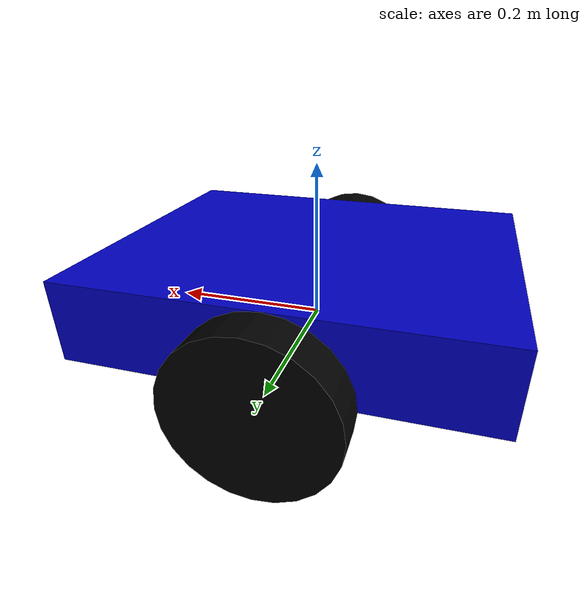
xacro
<?xml version="1.0"?>
<robot name="simple_robot" xmlns:xacro="http://www.ros.org/wiki/xacro">

  <material name="blue">
    <color rgba="0.0 0.0 0.8 1.0"/>
  </material>
  <material name="black">
    <color rgba="0.0 0.0 0.0 1.0"/>
  </material>

  <xacro:property name="wheel_radius" value="0.1"/>
  <xacro:property name="wheel_width" value="0.05"/>
  <xacro:property name="wheel_offset_y" value="0.225"/>

  <link name="base_link">
    <visual>
      <origin xyz="0.0 0.0 0.05" rpy="0.0 0.0 0.0"/>
      <geometry>
        <box size="0.5 0.4 0.1"/>
      </geometry>
      <material name="blue"/>
    </visual>
  </link>

  <xacro:macro name="wheel" params="name y_offset">
    <link name="${name}_link">
      <visual>
        <origin xyz="0.0 0.0 0.0" rpy="1.5708 0.0 0.0"/>
        <geometry>
          <cylinder radius="${wheel_radius}" length="${wheel_width}"/>
        </geometry>
        <material name="black"/>
      </visual>
    </link>

    <joint name="${name}_joint" type="continuous">
      <parent link="base_link"/>
      <child link="${name}_link"/>
      <origin xyz="0.0 ${y_offset} 0.0" rpy="0.0 0.0 0.0"/>
      <axis xyz="0 1 0"/>
    </joint>
  </xacro:macro>

  <xacro:wheel name="left_wheel" y_offset="${wheel_offset_y}"/>
  <xacro:wheel name="right_wheel" y_offset="${-wheel_offset_y}"/>

</robot>
